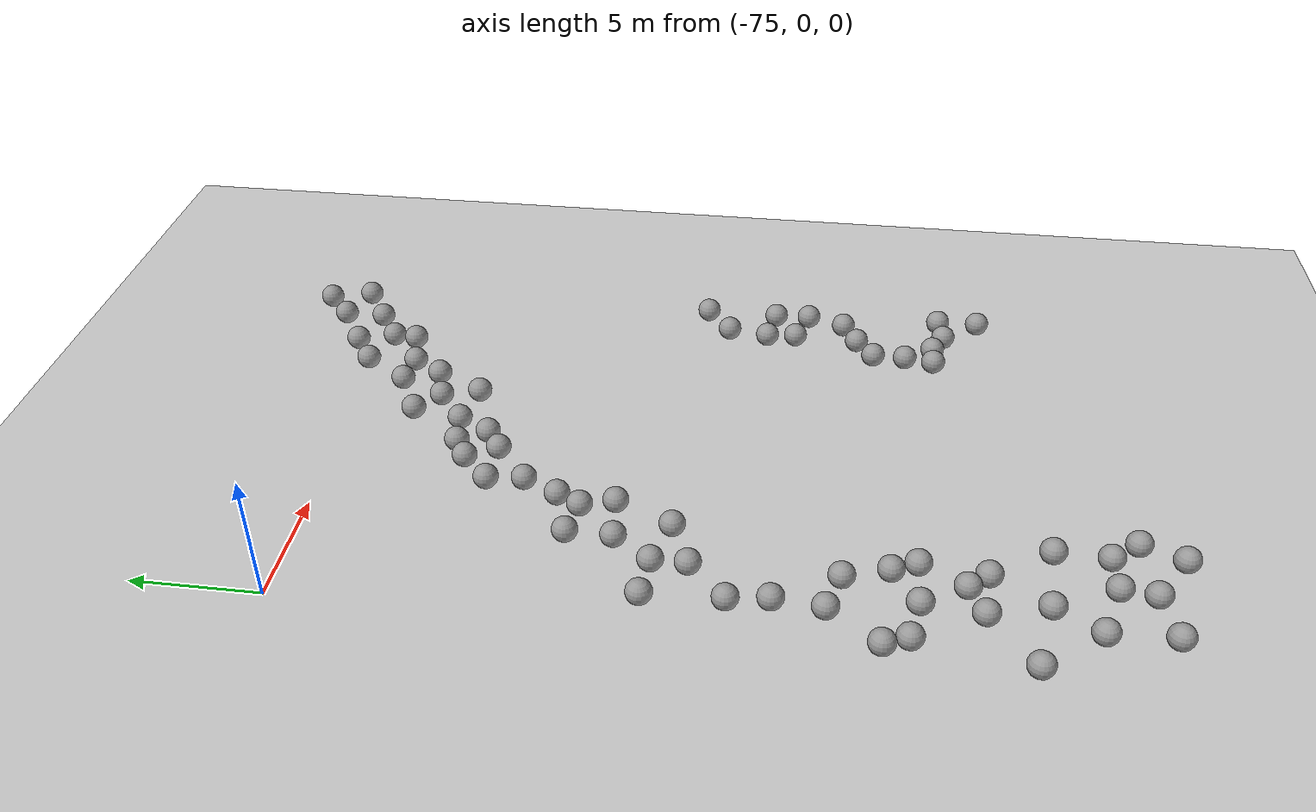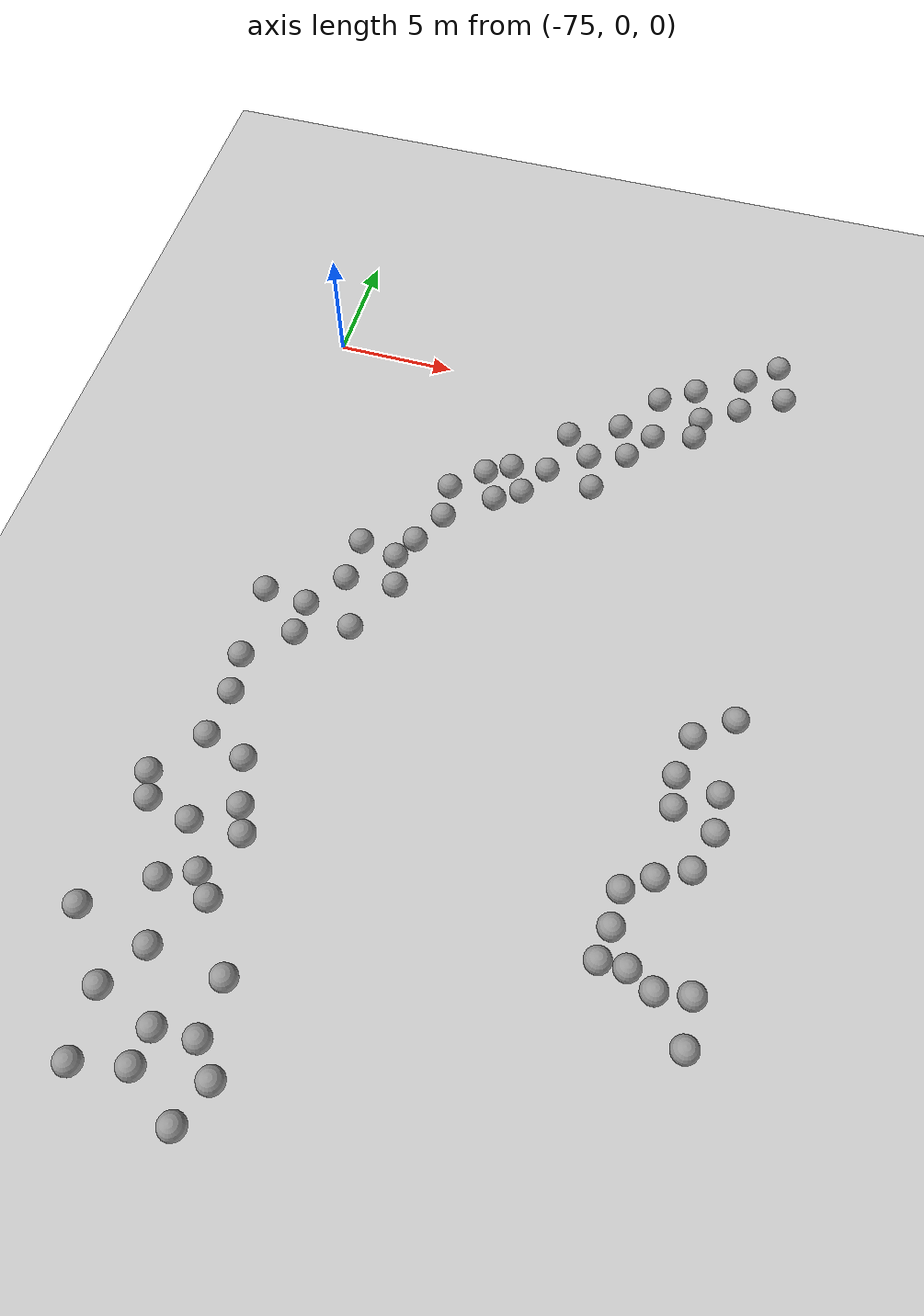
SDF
<sdf version="1.6">
 <world name="default">
  <model name="ground_plane">
   <static>1</static>
   <link name="link">
    <collision name="collision">
     <geometry><plane><normal>0 0 1</normal><size>100 100</size></plane></geometry>
     <surface><friction><ode><mu>100</mu><mu2>50</mu2></ode></friction></surface>
    </collision>
    <visual name="visual">
     <cast_shadows>0</cast_shadows>
     <geometry><plane><normal>0 0 1</normal><size>100 100</size></plane></geometry>
     <material>
      <script><uri>file://media/materials/scripts/gazebo.material</uri><name>Gazebo/Grey</name></script>
     </material>
    </visual>
   </link>
  </model>
  <model name="unit_sphere_0_clone_37">
   <pose>-71.4541 -29.9614 0.5 0 -0 0</pose>
   <link name="link">
    <inertial>
     <mass>1</mass>
     <inertia><ixx>0.1</ixx><ixy>0</ixy><ixz>0</ixz><iyy>0.1</iyy><iyz>0</iyz><izz>0.1</izz></inertia>
    </inertial>
    <collision name="collision"><geometry><sphere><radius>0.5</radius></sphere></geometry></collision>
    <visual name="visual">
     <geometry><sphere><radius>0.5</radius></sphere></geometry>
     <material>
      <script><name>Gazebo/Grey</name><uri>file://media/materials/scripts/gazebo.material</uri></script>
     </material>
    </visual>
   </link>
  </model>
  <model name="unit_sphere_0_clone_38">
   <pose>-73 -23 0.5 0 -0 0</pose>
   <link name="link">
    <inertial>
     <mass>1</mass>
     <inertia><ixx>0.1</ixx><ixy>0</ixy><ixz>0</ixz><iyy>0.1</iyy><iyz>0</iyz><izz>0.1</izz></inertia>
    </inertial>
    <collision name="collision"><geometry><sphere><radius>0.5</radius></sphere></geometry></collision>
    <visual name="visual">
     <geometry><sphere><radius>0.5</radius></sphere></geometry>
     <material>
      <script><name>Gazebo/Grey</name><uri>file://media/materials/scripts/gazebo.material</uri></script>
     </material>
    </visual>
   </link>
  </model>
  <model name="unit_sphere_0_clone_39">
   <pose>-71.9959 -14.7912 0.5 0 -0 0</pose>
   <link name="link">
    <inertial>
     <mass>1</mass>
     <inertia><ixx>0.1</ixx><ixy>0</ixy><ixz>0</ixz><iyy>0.1</iyy><iyz>0</iyz><izz>0.1</izz></inertia>
    </inertial>
    <collision name="collision"><geometry><sphere><radius>0.5</radius></sphere></geometry></collision>
    <visual name="visual">
     <geometry><sphere><radius>0.5</radius></sphere></geometry>
     <material>
      <script><name>Gazebo/Grey</name><uri>file://media/materials/scripts/gazebo.material</uri></script>
     </material>
    </visual>
   </link>
  </model>
  <model name="unit_sphere_0_clone_40">
   <pose>-65.2346 -5.96361 0.5 0 -0 0</pose>
   <link name="link">
    <inertial>
     <mass>1</mass>
     <inertia><ixx>0.1</ixx><ixy>0</ixy><ixz>0</ixz><iyy>0.1</iyy><iyz>0</iyz><izz>0.1</izz></inertia>
    </inertial>
    <collision name="collision"><geometry><sphere><radius>0.5</radius></sphere></geometry></collision>
    <visual name="visual">
     <geometry><sphere><radius>0.5</radius></sphere></geometry>
     <material>
      <script><name>Gazebo/Grey</name><uri>file://media/materials/scripts/gazebo.material</uri></script>
     </material>
    </visual>
   </link>
  </model>
  <model name="unit_sphere_0_clone_41">
   <pose>-55.4814 1.77001 0.5 0 -0 0</pose>
   <link name="link">
    <inertial>
     <mass>1</mass>
     <inertia><ixx>0.1</ixx><ixy>0</ixy><ixz>0</ixz><iyy>0.1</iyy><iyz>0</iyz><izz>0.1</izz></inertia>
    </inertial>
    <collision name="collision"><geometry><sphere><radius>0.5</radius></sphere></geometry></collision>
    <visual name="visual">
     <geometry><sphere><radius>0.5</radius></sphere></geometry>
     <material>
      <script><name>Gazebo/Grey</name><uri>file://media/materials/scripts/gazebo.material</uri></script>
     </material>
    </visual>
   </link>
  </model>
  <model name="unit_sphere_0_clone_61">
   <pose>-57.8075 -22.7856 0.5 0 -0 0</pose>
   <link name="link">
    <inertial>
     <mass>1</mass>
     <inertia><ixx>0.1</ixx><ixy>0</ixy><ixz>0</ixz><iyy>0.1</iyy><iyz>0</iyz><izz>0.1</izz></inertia>
    </inertial>
    <collision name="collision"><geometry><sphere><radius>0.5</radius></sphere></geometry></collision>
    <visual name="visual">
     <geometry><sphere><radius>0.5</radius></sphere></geometry>
     <material>
      <script><name>Gazebo/Grey</name><uri>file://media/materials/scripts/gazebo.material</uri></script>
     </material>
    </visual>
   </link>
  </model>
  <model name="unit_sphere_0_clone_84">
   <pose>-55.5232 -20.1009 0.5 0 -0 0</pose>
   <link name="link">
    <inertial>
     <mass>1</mass>
     <inertia><ixx>0.1</ixx><ixy>0</ixy><ixz>0</ixz><iyy>0.1</iyy><iyz>0</iyz><izz>0.1</izz></inertia>
    </inertial>
    <collision name="collision"><geometry><sphere><radius>0.5</radius></sphere></geometry></collision>
    <visual name="visual">
     <geometry><sphere><radius>0.5</radius></sphere></geometry>
     <material>
      <script><name>Gazebo/Grey</name><uri>file://media/materials/scripts/gazebo.material</uri></script>
     </material>
    </visual>
   </link>
  </model>
  <model name="unit_sphere_0_clone_85">
   <pose>-56.7151 -16.7524 0.5 0 -0 0</pose>
   <link name="link">
    <inertial>
     <mass>1</mass>
     <inertia><ixx>0.1</ixx><ixy>0</ixy><ixz>0</ixz><iyy>0.1</iyy><iyz>0</iyz><izz>0.1</izz></inertia>
    </inertial>
    <collision name="collision"><geometry><sphere><radius>0.5</radius></sphere></geometry></collision>
    <visual name="visual">
     <geometry><sphere><radius>0.5</radius></sphere></geometry>
     <material>
      <script><name>Gazebo/Grey</name><uri>file://media/materials/scripts/gazebo.material</uri></script>
     </material>
    </visual>
   </link>
  </model>
  <model name="unit_sphere_0_clone_96">
   <pose>-73.2566 -25.2419 0.5 0 -0 0</pose>
   <link name="link">
    <inertial>
     <mass>1</mass>
     <inertia><ixx>0.1</ixx><ixy>0</ixy><ixz>0</ixz><iyy>0.1</iyy><iyz>0</iyz><izz>0.1</izz></inertia>
    </inertial>
    <collision name="collision"><geometry><sphere><radius>0.5</radius></sphere></geometry></collision>
    <visual name="visual">
     <geometry><sphere><radius>0.5</radius></sphere></geometry>
     <material>
      <script><name>Gazebo/Grey</name><uri>file://media/materials/scripts/gazebo.material</uri></script>
     </material>
    </visual>
   </link>
  </model>
  <model name="unit_sphere_0_clone_97">
   <pose>-73.4269 -17.8362 0.5 0 -0 0</pose>
   <link name="link">
    <inertial>
     <mass>1</mass>
     <inertia><ixx>0.1</ixx><ixy>0</ixy><ixz>0</ixz><iyy>0.1</iyy><iyz>0</iyz><izz>0.1</izz></inertia>
    </inertial>
    <collision name="collision"><geometry><sphere><radius>0.5</radius></sphere></geometry></collision>
    <visual name="visual">
     <geometry><sphere><radius>0.5</radius></sphere></geometry>
     <material>
      <script><name>Gazebo/Grey</name><uri>file://media/materials/scripts/gazebo.material</uri></script>
     </material>
    </visual>
   </link>
  </model>
  <model name="unit_sphere_0_clone_98">
   <pose>-70.819 -10.0994 0.5 0 -0 0</pose>
   <link name="link">
    <inertial>
     <mass>1</mass>
     <inertia><ixx>0.1</ixx><ixy>0</ixy><ixz>0</ixz><iyy>0.1</iyy><iyz>0</iyz><izz>0.1</izz></inertia>
    </inertial>
    <collision name="collision"><geometry><sphere><radius>0.5</radius></sphere></geometry></collision>
    <visual name="visual">
     <geometry><sphere><radius>0.5</radius></sphere></geometry>
     <material>
      <script><name>Gazebo/Grey</name><uri>file://media/materials/scripts/gazebo.material</uri></script>
     </material>
    </visual>
   </link>
  </model>
  <model name="unit_sphere_0_clone_99">
   <pose>-64.0278 -2.5454 0.5 0 -0 0</pose>
   <link name="link">
    <inertial>
     <mass>1</mass>
     <inertia><ixx>0.1</ixx><ixy>0</ixy><ixz>0</ixz><iyy>0.1</iyy><iyz>0</iyz><izz>0.1</izz></inertia>
    </inertial>
    <collision name="collision"><geometry><sphere><radius>0.5</radius></sphere></geometry></collision>
    <visual name="visual">
     <geometry><sphere><radius>0.5</radius></sphere></geometry>
     <material>
      <script><name>Gazebo/Grey</name><uri>file://media/materials/scripts/gazebo.material</uri></script>
     </material>
    </visual>
   </link>
  </model>
  <model name="unit_sphere_0_clone_100">
   <pose>-59.2525 1.25452 0.5 0 -0 0</pose>
   <link name="link">
    <inertial>
     <mass>1</mass>
     <inertia><ixx>0.1</ixx><ixy>0</ixy><ixz>0</ixz><iyy>0.1</iyy><iyz>0</iyz><izz>0.1</izz></inertia>
    </inertial>
    <collision name="collision"><geometry><sphere><radius>0.5</radius></sphere></geometry></collision>
    <visual name="visual">
     <geometry><sphere><radius>0.5</radius></sphere></geometry>
     <material>
      <script><name>Gazebo/Grey</name><uri>file://media/materials/scripts/gazebo.material</uri></script>
     </material>
    </visual>
   </link>
  </model>
  <model name="unit_sphere_0_clone_148">
   <pose>-75.5055 -26.862 0.5 0 -0 0</pose>
   <link name="link">
    <inertial>
     <mass>1</mass>
     <inertia><ixx>0.1</ixx><ixy>0</ixy><ixz>0</ixz><iyy>0.1</iyy><iyz>0</iyz><izz>0.1</izz></inertia>
    </inertial>
    <collision name="collision"><geometry><sphere><radius>0.5</radius></sphere></geometry></collision>
    <visual name="visual">
     <geometry><sphere><radius>0.5</radius></sphere></geometry>
     <material>
      <script><name>Gazebo/Grey</name><uri>file://media/materials/scripts/gazebo.material</uri></script>
     </material>
    </visual>
   </link>
  </model>
  <model name="unit_sphere_0_clone_149">
   <pose>-75.1137 -21.6643 0.5 0 -0 0</pose>
   <link name="link">
    <inertial>
     <mass>1</mass>
     <inertia><ixx>0.1</ixx><ixy>0</ixy><ixz>0</ixz><iyy>0.1</iyy><iyz>0</iyz><izz>0.1</izz></inertia>
    </inertial>
    <collision name="collision"><geometry><sphere><radius>0.5</radius></sphere></geometry></collision>
    <visual name="visual">
     <geometry><sphere><radius>0.5</radius></sphere></geometry>
     <material>
      <script><name>Gazebo/Grey</name><uri>file://media/materials/scripts/gazebo.material</uri></script>
     </material>
    </visual>
   </link>
  </model>
  <model name="unit_sphere_0_clone_150">
   <pose>-73.7442 -13.2528 0.5 0 -0 0</pose>
   <link name="link">
    <inertial>
     <mass>1</mass>
     <inertia><ixx>0.1</ixx><ixy>0</ixy><ixz>0</ixz><iyy>0.1</iyy><iyz>0</iyz><izz>0.1</izz></inertia>
    </inertial>
    <collision name="collision"><geometry><sphere><radius>0.5</radius></sphere></geometry></collision>
    <visual name="visual">
     <geometry><sphere><radius>0.5</radius></sphere></geometry>
     <material>
      <script><name>Gazebo/Grey</name><uri>file://media/materials/scripts/gazebo.material</uri></script>
     </material>
    </visual>
   </link>
  </model>
  <model name="unit_sphere_0_clone_151">
   <pose>-68.1436 -6.51916 0.5 0 -0 0</pose>
   <link name="link">
    <inertial>
     <mass>1</mass>
     <inertia><ixx>0.1</ixx><ixy>0</ixy><ixz>0</ixz><iyy>0.1</iyy><iyz>0</iyz><izz>0.1</izz></inertia>
    </inertial>
    <collision name="collision"><geometry><sphere><radius>0.5</radius></sphere></geometry></collision>
    <visual name="visual">
     <geometry><sphere><radius>0.5</radius></sphere></geometry>
     <material>
      <script><name>Gazebo/Grey</name><uri>file://media/materials/scripts/gazebo.material</uri></script>
     </material>
    </visual>
   </link>
  </model>
  <model name="unit_sphere_1_clone_71">
   <pose>-54.6851 -26.0573 0.5 0 -0 0</pose>
   <link name="link">
    <inertial>
     <mass>1</mass>
     <inertia><ixx>0.1</ixx><ixy>0</ixy><ixz>0</ixz><iyy>0.1</iyy><iyz>0</iyz><izz>0.1</izz></inertia>
    </inertial>
    <collision name="collision"><geometry><sphere><radius>0.5</radius></sphere></geometry></collision>
    <visual name="visual">
     <geometry><sphere><radius>0.5</radius></sphere></geometry>
     <material>
      <script><name>Gazebo/Grey</name><uri>file://media/materials/scripts/gazebo.material</uri></script>
     </material>
    </visual>
   </link>
  </model>
  <model name="unit_sphere_1_clone_72">
   <pose>-54.7493 -24.3242 0.5 0 -0 0</pose>
   <link name="link">
    <inertial>
     <mass>1</mass>
     <inertia><ixx>0.1</ixx><ixy>0</ixy><ixz>0</ixz><iyy>0.1</iyy><iyz>0</iyz><izz>0.1</izz></inertia>
    </inertial>
    <collision name="collision"><geometry><sphere><radius>0.5</radius></sphere></geometry></collision>
    <visual name="visual">
     <geometry><sphere><radius>0.5</radius></sphere></geometry>
     <material>
      <script><name>Gazebo/Grey</name><uri>file://media/materials/scripts/gazebo.material</uri></script>
     </material>
    </visual>
   </link>
  </model>
  <model name="unit_sphere_1_clone_73">
   <pose>-56 -24.5039 0.5 0 -0 0</pose>
   <link name="link">
    <inertial>
     <mass>1</mass>
     <inertia><ixx>0.1</ixx><ixy>0</ixy><ixz>0</ixz><iyy>0.1</iyy><iyz>0</iyz><izz>0.1</izz></inertia>
    </inertial>
    <collision name="collision"><geometry><sphere><radius>0.5</radius></sphere></geometry></collision>
    <visual name="visual">
     <geometry><sphere><radius>0.5</radius></sphere></geometry>
     <material>
      <script><name>Gazebo/Grey</name><uri>file://media/materials/scripts/gazebo.material</uri></script>
     </material>
    </visual>
   </link>
  </model>
  <model name="unit_sphere_1_clone_74">
   <pose>-57 -24 0.5 0 -0 0</pose>
   <link name="link">
    <inertial>
     <mass>1</mass>
     <inertia><ixx>0.1</ixx><ixy>0</ixy><ixz>0</ixz><iyy>0.1</iyy><iyz>0</iyz><izz>0.1</izz></inertia>
    </inertial>
    <collision name="collision"><geometry><sphere><radius>0.5</radius></sphere></geometry></collision>
    <visual name="visual">
     <geometry><sphere><radius>0.5</radius></sphere></geometry>
     <material>
      <script><name>Gazebo/Grey</name><uri>file://media/materials/scripts/gazebo.material</uri></script>
     </material>
    </visual>
   </link>
  </model>
  <model name="unit_sphere_1_clone_75">
   <pose>-58 -24 0.5 0 -0 0</pose>
   <link name="link">
    <inertial>
     <mass>1</mass>
     <inertia><ixx>0.1</ixx><ixy>0</ixy><ixz>0</ixz><iyy>0.1</iyy><iyz>0</iyz><izz>0.1</izz></inertia>
    </inertial>
    <collision name="collision"><geometry><sphere><radius>0.5</radius></sphere></geometry></collision>
    <visual name="visual">
     <geometry><sphere><radius>0.5</radius></sphere></geometry>
     <material>
      <script><name>Gazebo/Grey</name><uri>file://media/materials/scripts/gazebo.material</uri></script>
     </material>
    </visual>
   </link>
  </model>
  <model name="unit_sphere_1_clone_76">
   <pose>-56.7215 -20.6939 0.5 0 -0 0</pose>
   <link name="link">
    <inertial>
     <mass>1</mass>
     <inertia><ixx>0.1</ixx><ixy>0</ixy><ixz>0</ixz><iyy>0.1</iyy><iyz>0</iyz><izz>0.1</izz></inertia>
    </inertial>
    <collision name="collision"><geometry><sphere><radius>0.5</radius></sphere></geometry></collision>
    <visual name="visual">
     <geometry><sphere><radius>0.5</radius></sphere></geometry>
     <material>
      <script><name>Gazebo/Grey</name><uri>file://media/materials/scripts/gazebo.material</uri></script>
     </material>
    </visual>
   </link>
  </model>
  <model name="unit_sphere_1_clone_77">
   <pose>-57.7725 -21.4186 0.5 0 -0 0</pose>
   <link name="link">
    <inertial>
     <mass>1</mass>
     <inertia><ixx>0.1</ixx><ixy>0</ixy><ixz>0</ixz><iyy>0.1</iyy><iyz>0</iyz><izz>0.1</izz></inertia>
    </inertial>
    <collision name="collision"><geometry><sphere><radius>0.5</radius></sphere></geometry></collision>
    <visual name="visual">
     <geometry><sphere><radius>0.5</radius></sphere></geometry>
     <material>
      <script><name>Gazebo/Grey</name><uri>file://media/materials/scripts/gazebo.material</uri></script>
     </material>
    </visual>
   </link>
  </model>
  <model name="unit_sphere_1_clone_78">
   <pose>-55 -18.5396 0.5 0 -0 0</pose>
   <link name="link">
    <inertial>
     <mass>1</mass>
     <inertia><ixx>0.1</ixx><ixy>0</ixy><ixz>0</ixz><iyy>0.1</iyy><iyz>0</iyz><izz>0.1</izz></inertia>
    </inertial>
    <collision name="collision"><geometry><sphere><radius>0.5</radius></sphere></geometry></collision>
    <visual name="visual">
     <geometry><sphere><radius>0.5</radius></sphere></geometry>
     <material>
      <script><name>Gazebo/Grey</name><uri>file://media/materials/scripts/gazebo.material</uri></script>
     </material>
    </visual>
   </link>
  </model>
  <model name="unit_sphere_1_clone_79">
   <pose>-55.068 -17.0764 0.5 0 -0 0</pose>
   <link name="link">
    <inertial>
     <mass>1</mass>
     <inertia><ixx>0.1</ixx><ixy>0</ixy><ixz>0</ixz><iyy>0.1</iyy><iyz>0</iyz><izz>0.1</izz></inertia>
    </inertial>
    <collision name="collision"><geometry><sphere><radius>0.5</radius></sphere></geometry></collision>
    <visual name="visual">
     <geometry><sphere><radius>0.5</radius></sphere></geometry>
     <material>
      <script><name>Gazebo/Grey</name><uri>file://media/materials/scripts/gazebo.material</uri></script>
     </material>
    </visual>
   </link>
  </model>
  <model name="unit_sphere_1_clone_80">
   <pose>-56.5933 -17.9941 0.5 0 -0 0</pose>
   <link name="link">
    <inertial>
     <mass>1</mass>
     <inertia><ixx>0.1</ixx><ixy>0</ixy><ixz>0</ixz><iyy>0.1</iyy><iyz>0</iyz><izz>0.1</izz></inertia>
    </inertial>
    <collision name="collision"><geometry><sphere><radius>0.5</radius></sphere></geometry></collision>
    <visual name="visual">
     <geometry><sphere><radius>0.5</radius></sphere></geometry>
     <material>
      <script><name>Gazebo/Grey</name><uri>file://media/materials/scripts/gazebo.material</uri></script>
     </material>
    </visual>
   </link>
  </model>
  <model name="unit_sphere_1_clone_81">
   <pose>-56.4221 -15.0572 0.5 0 -0 0</pose>
   <link name="link">
    <inertial>
     <mass>1</mass>
     <inertia><ixx>0.1</ixx><ixy>0</ixy><ixz>0</ixz><iyy>0.1</iyy><iyz>0</iyz><izz>0.1</izz></inertia>
    </inertial>
    <collision name="collision"><geometry><sphere><radius>0.5</radius></sphere></geometry></collision>
    <visual name="visual">
     <geometry><sphere><radius>0.5</radius></sphere></geometry>
     <material>
      <script><name>Gazebo/Grey</name><uri>file://media/materials/scripts/gazebo.material</uri></script>
     </material>
    </visual>
   </link>
  </model>
  <model name="unit_sphere_1_clone_82">
   <pose>-55 -14 0.5 0 -0 0</pose>
   <link name="link">
    <inertial>
     <mass>1</mass>
     <inertia><ixx>0.1</ixx><ixy>0</ixy><ixz>0</ixz><iyy>0.1</iyy><iyz>0</iyz><izz>0.1</izz></inertia>
    </inertial>
    <collision name="collision"><geometry><sphere><radius>0.5</radius></sphere></geometry></collision>
    <visual name="visual">
     <geometry><sphere><radius>0.5</radius></sphere></geometry>
     <material>
      <script><name>Gazebo/Grey</name><uri>file://media/materials/scripts/gazebo.material</uri></script>
     </material>
    </visual>
   </link>
  </model>
  <model name="unit_sphere_1_clone_166">
   <pose>-55.9641 3.50484 0.5 0 -0 0</pose>
   <link name="link">
    <inertial>
     <mass>1</mass>
     <inertia><ixx>0.1</ixx><ixy>0</ixy><ixz>0</ixz><iyy>0.1</iyy><iyz>0</iyz><izz>0.1</izz></inertia>
    </inertial>
    <collision name="collision"><geometry><sphere><radius>0.5</radius></sphere></geometry></collision>
    <visual name="visual">
     <geometry><sphere><radius>0.5</radius></sphere></geometry>
     <material>
      <script><name>Gazebo/Grey</name><uri>file://media/materials/scripts/gazebo.material</uri></script>
     </material>
    </visual>
   </link>
  </model>
  <model name="unit_sphere_1_clone_168">
   <pose>-57.2548 2.42054 0.5 0 -0 0</pose>
   <link name="link">
    <inertial>
     <mass>1</mass>
     <inertia><ixx>0.1</ixx><ixy>0</ixy><ixz>0</ixz><iyy>0.1</iyy><iyz>0</iyz><izz>0.1</izz></inertia>
    </inertial>
    <collision name="collision"><geometry><sphere><radius>0.5</radius></sphere></geometry></collision>
    <visual name="visual">
     <geometry><sphere><radius>0.5</radius></sphere></geometry>
     <material>
      <script><name>Gazebo/Grey</name><uri>file://media/materials/scripts/gazebo.material</uri></script>
     </material>
    </visual>
   </link>
  </model>
  <model name="unit_sphere_1_clone_169">
   <pose>-57.2641 0.695641 0.5 0 -0 0</pose>
   <link name="link">
    <inertial>
     <mass>1</mass>
     <inertia><ixx>0.1</ixx><ixy>0</ixy><ixz>0</ixz><iyy>0.1</iyy><iyz>0</iyz><izz>0.1</izz></inertia>
    </inertial>
    <collision name="collision"><geometry><sphere><radius>0.5</radius></sphere></geometry></collision>
    <visual name="visual">
     <geometry><sphere><radius>0.5</radius></sphere></geometry>
     <material>
      <script><name>Gazebo/Grey</name><uri>file://media/materials/scripts/gazebo.material</uri></script>
     </material>
    </visual>
   </link>
  </model>
  <model name="unit_sphere_1_clone_170">
   <pose>-58.7625 -0.258064 0.5 0 -0 0</pose>
   <link name="link">
    <inertial>
     <mass>1</mass>
     <inertia><ixx>0.1</ixx><ixy>0</ixy><ixz>0</ixz><iyy>0.1</iyy><iyz>0</iyz><izz>0.1</izz></inertia>
    </inertial>
    <collision name="collision"><geometry><sphere><radius>0.5</radius></sphere></geometry></collision>
    <visual name="visual">
     <geometry><sphere><radius>0.5</radius></sphere></geometry>
     <material>
      <script><name>Gazebo/Grey</name><uri>file://media/materials/scripts/gazebo.material</uri></script>
     </material>
    </visual>
   </link>
  </model>
  <model name="unit_sphere_1_clone_171">
   <pose>-58.8745 -1.276 0.5 0 -0 0</pose>
   <link name="link">
    <inertial>
     <mass>1</mass>
     <inertia><ixx>0.1</ixx><ixy>0</ixy><ixz>0</ixz><iyy>0.1</iyy><iyz>0</iyz><izz>0.1</izz></inertia>
    </inertial>
    <collision name="collision"><geometry><sphere><radius>0.5</radius></sphere></geometry></collision>
    <visual name="visual">
     <geometry><sphere><radius>0.5</radius></sphere></geometry>
     <material>
      <script><name>Gazebo/Grey</name><uri>file://media/materials/scripts/gazebo.material</uri></script>
     </material>
    </visual>
   </link>
  </model>
  <model name="unit_sphere_1_clone_172">
   <pose>-60.5607 -1.70853 0.5 0 -0 0</pose>
   <link name="link">
    <inertial>
     <mass>1</mass>
     <inertia><ixx>0.1</ixx><ixy>0</ixy><ixz>0</ixz><iyy>0.1</iyy><iyz>0</iyz><izz>0.1</izz></inertia>
    </inertial>
    <collision name="collision"><geometry><sphere><radius>0.5</radius></sphere></geometry></collision>
    <visual name="visual">
     <geometry><sphere><radius>0.5</radius></sphere></geometry>
     <material>
      <script><name>Gazebo/Grey</name><uri>file://media/materials/scripts/gazebo.material</uri></script>
     </material>
    </visual>
   </link>
  </model>
  <model name="unit_sphere_1_clone_173">
   <pose>-60.6725 0.361998 0.5 0 -0 0</pose>
   <link name="link">
    <inertial>
     <mass>1</mass>
     <inertia><ixx>0.1</ixx><ixy>0</ixy><ixz>0</ixz><iyy>0.1</iyy><iyz>0</iyz><izz>0.1</izz></inertia>
    </inertial>
    <collision name="collision"><geometry><sphere><radius>0.5</radius></sphere></geometry></collision>
    <visual name="visual">
     <geometry><sphere><radius>0.5</radius></sphere></geometry>
     <material>
      <script><name>Gazebo/Grey</name><uri>file://media/materials/scripts/gazebo.material</uri></script>
     </material>
    </visual>
   </link>
  </model>
  <model name="unit_sphere_1_clone_174">
   <pose>-61.4149 -3 0.5 0 -0 0</pose>
   <link name="link">
    <inertial>
     <mass>1</mass>
     <inertia><ixx>0.1</ixx><ixy>0</ixy><ixz>0</ixz><iyy>0.1</iyy><iyz>0</iyz><izz>0.1</izz></inertia>
    </inertial>
    <collision name="collision"><geometry><sphere><radius>0.5</radius></sphere></geometry></collision>
    <visual name="visual">
     <geometry><sphere><radius>0.5</radius></sphere></geometry>
     <material>
      <script><name>Gazebo/Grey</name><uri>file://media/materials/scripts/gazebo.material</uri></script>
     </material>
    </visual>
   </link>
  </model>
  <model name="unit_sphere_1_clone_175">
   <pose>-62 -1.54072 0.5 0 -0 0</pose>
   <link name="link">
    <inertial>
     <mass>1</mass>
     <inertia><ixx>0.1</ixx><ixy>0</ixy><ixz>0</ixz><iyy>0.1</iyy><iyz>0</iyz><izz>0.1</izz></inertia>
    </inertial>
    <collision name="collision"><geometry><sphere><radius>0.5</radius></sphere></geometry></collision>
    <visual name="visual">
     <geometry><sphere><radius>0.5</radius></sphere></geometry>
     <material>
      <script><name>Gazebo/Grey</name><uri>file://media/materials/scripts/gazebo.material</uri></script>
     </material>
    </visual>
   </link>
  </model>
  <model name="unit_sphere_1_clone_176">
   <pose>-62.9529 -3.46797 0.5 0 -0 0</pose>
   <link name="link">
    <inertial>
     <mass>1</mass>
     <inertia><ixx>0.1</ixx><ixy>0</ixy><ixz>0</ixz><iyy>0.1</iyy><iyz>0</iyz><izz>0.1</izz></inertia>
    </inertial>
    <collision name="collision"><geometry><sphere><radius>0.5</radius></sphere></geometry></collision>
    <visual name="visual">
     <geometry><sphere><radius>0.5</radius></sphere></geometry>
     <material>
      <script><name>Gazebo/Grey</name><uri>file://media/materials/scripts/gazebo.material</uri></script>
     </material>
    </visual>
   </link>
  </model>
  <model name="unit_sphere_1_clone_177">
   <pose>-62.5025 -5 0.5 0 -0 0</pose>
   <link name="link">
    <inertial>
     <mass>1</mass>
     <inertia><ixx>0.1</ixx><ixy>0</ixy><ixz>0</ixz><iyy>0.1</iyy><iyz>0</iyz><izz>0.1</izz></inertia>
    </inertial>
    <collision name="collision"><geometry><sphere><radius>0.5</radius></sphere></geometry></collision>
    <visual name="visual">
     <geometry><sphere><radius>0.5</radius></sphere></geometry>
     <material>
      <script><name>Gazebo/Grey</name><uri>file://media/materials/scripts/gazebo.material</uri></script>
     </material>
    </visual>
   </link>
  </model>
  <model name="unit_sphere_1_clone_178">
   <pose>-64.4679 -4.61505 0.5 0 -0 0</pose>
   <link name="link">
    <inertial>
     <mass>1</mass>
     <inertia><ixx>0.1</ixx><ixy>0</ixy><ixz>0</ixz><iyy>0.1</iyy><iyz>0</iyz><izz>0.1</izz></inertia>
    </inertial>
    <collision name="collision"><geometry><sphere><radius>0.5</radius></sphere></geometry></collision>
    <visual name="visual">
     <geometry><sphere><radius>0.5</radius></sphere></geometry>
     <material>
      <script><name>Gazebo/Grey</name><uri>file://media/materials/scripts/gazebo.material</uri></script>
     </material>
    </visual>
   </link>
  </model>
  <model name="unit_sphere_1_clone_179">
   <pose>-65.9403 -4.84031 0.5 0 -0 0</pose>
   <link name="link">
    <inertial>
     <mass>1</mass>
     <inertia><ixx>0.1</ixx><ixy>0</ixy><ixz>0</ixz><iyy>0.1</iyy><iyz>0</iyz><izz>0.1</izz></inertia>
    </inertial>
    <collision name="collision"><geometry><sphere><radius>0.5</radius></sphere></geometry></collision>
    <visual name="visual">
     <geometry><sphere><radius>0.5</radius></sphere></geometry>
     <material>
      <script><name>Gazebo/Grey</name><uri>file://media/materials/scripts/gazebo.material</uri></script>
     </material>
    </visual>
   </link>
  </model>
  <model name="unit_sphere_1_clone_180">
   <pose>-66.224 -6.61765 0.5 0 -0 0</pose>
   <link name="link">
    <inertial>
     <mass>1</mass>
     <inertia><ixx>0.1</ixx><ixy>0</ixy><ixz>0</ixz><iyy>0.1</iyy><iyz>0</iyz><izz>0.1</izz></inertia>
    </inertial>
    <collision name="collision"><geometry><sphere><radius>0.5</radius></sphere></geometry></collision>
    <visual name="visual">
     <geometry><sphere><radius>0.5</radius></sphere></geometry>
     <material>
      <script><name>Gazebo/Grey</name><uri>file://media/materials/scripts/gazebo.material</uri></script>
     </material>
    </visual>
   </link>
  </model>
  <model name="unit_sphere_1_clone_181">
   <pose>-66.9087 -5.39095 0.5 0 -0 0</pose>
   <link name="link">
    <inertial>
     <mass>1</mass>
     <inertia><ixx>0.1</ixx><ixy>0</ixy><ixz>0</ixz><iyy>0.1</iyy><iyz>0</iyz><izz>0.1</izz></inertia>
    </inertial>
    <collision name="collision"><geometry><sphere><radius>0.5</radius></sphere></geometry></collision>
    <visual name="visual">
     <geometry><sphere><radius>0.5</radius></sphere></geometry>
     <material>
      <script><name>Gazebo/Grey</name><uri>file://media/materials/scripts/gazebo.material</uri></script>
     </material>
    </visual>
   </link>
  </model>
  <model name="unit_sphere_1_clone_182">
   <pose>-68 -8 0.5 0 -0 0</pose>
   <link name="link">
    <inertial>
     <mass>1</mass>
     <inertia><ixx>0.1</ixx><ixy>0</ixy><ixz>0</ixz><iyy>0.1</iyy><iyz>0</iyz><izz>0.1</izz></inertia>
    </inertial>
    <collision name="collision"><geometry><sphere><radius>0.5</radius></sphere></geometry></collision>
    <visual name="visual">
     <geometry><sphere><radius>0.5</radius></sphere></geometry>
     <material>
      <script><name>Gazebo/Grey</name><uri>file://media/materials/scripts/gazebo.material</uri></script>
     </material>
    </visual>
   </link>
  </model>
  <model name="unit_sphere_1_clone_183">
   <pose>-69.2827 -10.398 0.5 0 -0 0</pose>
   <link name="link">
    <inertial>
     <mass>1</mass>
     <inertia><ixx>0.1</ixx><ixy>0</ixy><ixz>0</ixz><iyy>0.1</iyy><iyz>0</iyz><izz>0.1</izz></inertia>
    </inertial>
    <collision name="collision"><geometry><sphere><radius>0.5</radius></sphere></geometry></collision>
    <visual name="visual">
     <geometry><sphere><radius>0.5</radius></sphere></geometry>
     <material>
      <script><name>Gazebo/Grey</name><uri>file://media/materials/scripts/gazebo.material</uri></script>
     </material>
    </visual>
   </link>
  </model>
  <model name="unit_sphere_1_clone_184">
   <pose>-68.7593 -9.4368 0.5 0 -0 0</pose>
   <link name="link">
    <inertial>
     <mass>1</mass>
     <inertia><ixx>0.1</ixx><ixy>0</ixy><ixz>0</ixz><iyy>0.1</iyy><iyz>0</iyz><izz>0.1</izz></inertia>
    </inertial>
    <collision name="collision"><geometry><sphere><radius>0.5</radius></sphere></geometry></collision>
    <visual name="visual">
     <geometry><sphere><radius>0.5</radius></sphere></geometry>
     <material>
      <script><name>Gazebo/Grey</name><uri>file://media/materials/scripts/gazebo.material</uri></script>
     </material>
    </visual>
   </link>
  </model>
  <model name="unit_sphere_1_clone_185">
   <pose>-70.8676 -11.913 0.5 0 -0 0</pose>
   <link name="link">
    <inertial>
     <mass>1</mass>
     <inertia><ixx>0.1</ixx><ixy>0</ixy><ixz>0</ixz><iyy>0.1</iyy><iyz>0</iyz><izz>0.1</izz></inertia>
    </inertial>
    <collision name="collision"><geometry><sphere><radius>0.5</radius></sphere></geometry></collision>
    <visual name="visual">
     <geometry><sphere><radius>0.5</radius></sphere></geometry>
     <material>
      <script><name>Gazebo/Grey</name><uri>file://media/materials/scripts/gazebo.material</uri></script>
     </material>
    </visual>
   </link>
  </model>
  <model name="unit_sphere_1_clone_186">
   <pose>-68.9048 -11.7259 0.5 0 -0 0</pose>
   <link name="link">
    <inertial>
     <mass>1</mass>
     <inertia><ixx>0.1</ixx><ixy>0</ixy><ixz>0</ixz><iyy>0.1</iyy><iyz>0</iyz><izz>0.1</izz></inertia>
    </inertial>
    <collision name="collision"><geometry><sphere><radius>0.5</radius></sphere></geometry></collision>
    <visual name="visual">
     <geometry><sphere><radius>0.5</radius></sphere></geometry>
     <material>
      <script><name>Gazebo/Grey</name><uri>file://media/materials/scripts/gazebo.material</uri></script>
     </material>
    </visual>
   </link>
  </model>
  <model name="unit_sphere_1_clone_187">
   <pose>-70 -14 0.5 0 -0 0</pose>
   <link name="link">
    <inertial>
     <mass>1</mass>
     <inertia><ixx>0.1</ixx><ixy>0</ixy><ixz>0</ixz><iyy>0.1</iyy><iyz>0</iyz><izz>0.1</izz></inertia>
    </inertial>
    <collision name="collision"><geometry><sphere><radius>0.5</radius></sphere></geometry></collision>
    <visual name="visual">
     <geometry><sphere><radius>0.5</radius></sphere></geometry>
     <material>
      <script><name>Gazebo/Grey</name><uri>file://media/materials/scripts/gazebo.material</uri></script>
     </material>
    </visual>
   </link>
  </model>
  <model name="unit_sphere_1_clone_188">
   <pose>-72 -13.4318 0.5 0 -0 0</pose>
   <link name="link">
    <inertial>
     <mass>1</mass>
     <inertia><ixx>0.1</ixx><ixy>0</ixy><ixz>0</ixz><iyy>0.1</iyy><iyz>0</iyz><izz>0.1</izz></inertia>
    </inertial>
    <collision name="collision"><geometry><sphere><radius>0.5</radius></sphere></geometry></collision>
    <visual name="visual">
     <geometry><sphere><radius>0.5</radius></sphere></geometry>
     <material>
      <script><name>Gazebo/Grey</name><uri>file://media/materials/scripts/gazebo.material</uri></script>
     </material>
    </visual>
   </link>
  </model>
  <model name="unit_sphere_1_clone_189">
   <pose>-73.6228 -16.266 0.5 0 -0 0</pose>
   <link name="link">
    <inertial>
     <mass>1</mass>
     <inertia><ixx>0.1</ixx><ixy>0</ixy><ixz>0</ixz><iyy>0.1</iyy><iyz>0</iyz><izz>0.1</izz></inertia>
    </inertial>
    <collision name="collision"><geometry><sphere><radius>0.5</radius></sphere></geometry></collision>
    <visual name="visual">
     <geometry><sphere><radius>0.5</radius></sphere></geometry>
     <material>
      <script><name>Gazebo/Grey</name><uri>file://media/materials/scripts/gazebo.material</uri></script>
     </material>
    </visual>
   </link>
  </model>
  <model name="unit_sphere_1_clone_190">
   <pose>-73.6322 -19.7402 0.5 0 -0 0</pose>
   <link name="link">
    <inertial>
     <mass>1</mass>
     <inertia><ixx>0.1</ixx><ixy>0</ixy><ixz>0</ixz><iyy>0.1</iyy><iyz>0</iyz><izz>0.1</izz></inertia>
    </inertial>
    <collision name="collision"><geometry><sphere><radius>0.5</radius></sphere></geometry></collision>
    <visual name="visual">
     <geometry><sphere><radius>0.5</radius></sphere></geometry>
     <material>
      <script><name>Gazebo/Grey</name><uri>file://media/materials/scripts/gazebo.material</uri></script>
     </material>
    </visual>
   </link>
  </model>
  <model name="unit_sphere_1_clone_191">
   <pose>-74.7293 -22.6149 0.5 0 -0 0</pose>
   <link name="link">
    <inertial>
     <mass>1</mass>
     <inertia><ixx>0.1</ixx><ixy>0</ixy><ixz>0</ixz><iyy>0.1</iyy><iyz>0</iyz><izz>0.1</izz></inertia>
    </inertial>
    <collision name="collision"><geometry><sphere><radius>0.5</radius></sphere></geometry></collision>
    <visual name="visual">
     <geometry><sphere><radius>0.5</radius></sphere></geometry>
     <material>
      <script><name>Gazebo/Grey</name><uri>file://media/materials/scripts/gazebo.material</uri></script>
     </material>
    </visual>
   </link>
  </model>
  <model name="unit_sphere_1_clone_192">
   <pose>-71.9967 -20.2737 0.5 0 -0 0</pose>
   <link name="link">
    <inertial>
     <mass>1</mass>
     <inertia><ixx>0.1</ixx><ixy>0</ixy><ixz>0</ixz><iyy>0.1</iyy><iyz>0</iyz><izz>0.1</izz></inertia>
    </inertial>
    <collision name="collision"><geometry><sphere><radius>0.5</radius></sphere></geometry></collision>
    <visual name="visual">
     <geometry><sphere><radius>0.5</radius></sphere></geometry>
     <material>
      <script><name>Gazebo/Grey</name><uri>file://media/materials/scripts/gazebo.material</uri></script>
     </material>
    </visual>
   </link>
  </model>
  <model name="unit_sphere_1_clone_193">
   <pose>-71 -23 0.5 0 -0 0</pose>
   <link name="link">
    <inertial>
     <mass>1</mass>
     <inertia><ixx>0.1</ixx><ixy>0</ixy><ixz>0</ixz><iyy>0.1</iyy><iyz>0</iyz><izz>0.1</izz></inertia>
    </inertial>
    <collision name="collision"><geometry><sphere><radius>0.5</radius></sphere></geometry></collision>
    <visual name="visual">
     <geometry><sphere><radius>0.5</radius></sphere></geometry>
     <material>
      <script><name>Gazebo/Grey</name><uri>file://media/materials/scripts/gazebo.material</uri></script>
     </material>
    </visual>
   </link>
  </model>
  <model name="unit_sphere_1_clone_194">
   <pose>-71.4455 -22.0208 0.5 0 -0 0</pose>
   <link name="link">
    <inertial>
     <mass>1</mass>
     <inertia><ixx>0.1</ixx><ixy>0</ixy><ixz>0</ixz><iyy>0.1</iyy><iyz>0</iyz><izz>0.1</izz></inertia>
    </inertial>
    <collision name="collision"><geometry><sphere><radius>0.5</radius></sphere></geometry></collision>
    <visual name="visual">
     <geometry><sphere><radius>0.5</radius></sphere></geometry>
     <material>
      <script><name>Gazebo/Grey</name><uri>file://media/materials/scripts/gazebo.material</uri></script>
     </material>
    </visual>
   </link>
  </model>
  <model name="unit_sphere_1_clone_195">
   <pose>-71.9967 -24.6907 0.5 -0.039771 -0.035314 0.000701</pose>
   <link name="link">
    <inertial>
     <mass>1</mass>
     <inertia><ixx>0.1</ixx><ixy>0</ixy><ixz>0</ixz><iyy>0.1</iyy><iyz>0</iyz><izz>0.1</izz></inertia>
    </inertial>
    <collision name="collision"><geometry><sphere><radius>0.5</radius></sphere></geometry></collision>
    <visual name="visual">
     <geometry><sphere><radius>0.5</radius></sphere></geometry>
     <material>
      <script><name>Gazebo/Grey</name><uri>file://media/materials/scripts/gazebo.material</uri></script>
     </material>
    </visual>
   </link>
  </model>
  <model name="unit_sphere_1_clone_196">
   <pose>-71.2972 -25.4778 0.5 0.039629 0.035205 0.000696</pose>
   <link name="link">
    <inertial>
     <mass>1</mass>
     <inertia><ixx>0.1</ixx><ixy>0</ixy><ixz>0</ixz><iyy>0.1</iyy><iyz>0</iyz><izz>0.1</izz></inertia>
    </inertial>
    <collision name="collision"><geometry><sphere><radius>0.5</radius></sphere></geometry></collision>
    <visual name="visual">
     <geometry><sphere><radius>0.5</radius></sphere></geometry>
     <material>
      <script><name>Gazebo/Grey</name><uri>file://media/materials/scripts/gazebo.material</uri></script>
     </material>
    </visual>
   </link>
  </model>
  <model name="unit_sphere_1_clone_197">
   <pose>-72.6393 -27.5331 0.5 0 -0 0</pose>
   <link name="link">
    <inertial>
     <mass>1</mass>
     <inertia><ixx>0.1</ixx><ixy>0</ixy><ixz>0</ixz><iyy>0.1</iyy><iyz>0</iyz><izz>0.1</izz></inertia>
    </inertial>
    <collision name="collision"><geometry><sphere><radius>0.5</radius></sphere></geometry></collision>
    <visual name="visual">
     <geometry><sphere><radius>0.5</radius></sphere></geometry>
     <material>
      <script><name>Gazebo/Grey</name><uri>file://media/materials/scripts/gazebo.material</uri></script>
     </material>
    </visual>
   </link>
  </model>
  <model name="unit_sphere_1_clone_198">
   <pose>-73.7093 -29.1846 0.5 0 -0 0</pose>
   <link name="link">
    <inertial>
     <mass>1</mass>
     <inertia><ixx>0.1</ixx><ixy>0</ixy><ixz>0</ixz><iyy>0.1</iyy><iyz>0</iyz><izz>0.1</izz></inertia>
    </inertial>
    <collision name="collision"><geometry><sphere><radius>0.5</radius></sphere></geometry></collision>
    <visual name="visual">
     <geometry><sphere><radius>0.5</radius></sphere></geometry>
     <material>
      <script><name>Gazebo/Grey</name><uri>file://media/materials/scripts/gazebo.material</uri></script>
     </material>
    </visual>
   </link>
  </model>
  <model name="unit_sphere_1_clone_199">
   <pose>-69.7825 -27.8562 0.5 0 -0 0</pose>
   <link name="link">
    <inertial>
     <mass>1</mass>
     <inertia><ixx>0.1</ixx><ixy>0</ixy><ixz>0</ixz><iyy>0.1</iyy><iyz>0</iyz><izz>0.1</izz></inertia>
    </inertial>
    <collision name="collision"><geometry><sphere><radius>0.5</radius></sphere></geometry></collision>
    <visual name="visual">
     <geometry><sphere><radius>0.5</radius></sphere></geometry>
     <material>
      <script><name>Gazebo/Grey</name><uri>file://media/materials/scripts/gazebo.material</uri></script>
     </material>
    </visual>
   </link>
  </model>
  <model name="unit_sphere_1_clone_200">
   <pose>-73.6243 -31.6709 0.5 0 -0 0</pose>
   <link name="link">
    <inertial>
     <mass>1</mass>
     <inertia><ixx>0.1</ixx><ixy>0</ixy><ixz>0</ixz><iyy>0.1</iyy><iyz>0</iyz><izz>0.1</izz></inertia>
    </inertial>
    <collision name="collision"><geometry><sphere><radius>0.5</radius></sphere></geometry></collision>
    <visual name="visual">
     <geometry><sphere><radius>0.5</radius></sphere></geometry>
     <material>
      <script><name>Gazebo/Grey</name><uri>file://media/materials/scripts/gazebo.material</uri></script>
     </material>
    </visual>
   </link>
  </model>
  <model name="unit_sphere_1_clone_201">
   <pose>-69.8829 -29.9106 0.5 0 -0 0</pose>
   <link name="link">
    <inertial>
     <mass>1</mass>
     <inertia><ixx>0.1</ixx><ixy>0</ixy><ixz>0</ixz><iyy>0.1</iyy><iyz>0</iyz><izz>0.1</izz></inertia>
    </inertial>
    <collision name="collision"><geometry><sphere><radius>0.5</radius></sphere></geometry></collision>
    <visual name="visual">
     <geometry><sphere><radius>0.5</radius></sphere></geometry>
     <material>
      <script><name>Gazebo/Grey</name><uri>file://media/materials/scripts/gazebo.material</uri></script>
     </material>
    </visual>
   </link>
  </model>
  <model name="unit_sphere_1_clone_202">
   <pose>-71.6309 -31.2731 0.5 0 -0 0</pose>
   <link name="link">
    <inertial>
     <mass>1</mass>
     <inertia><ixx>0.1</ixx><ixy>0</ixy><ixz>0</ixz><iyy>0.1</iyy><iyz>0</iyz><izz>0.1</izz></inertia>
    </inertial>
    <collision name="collision"><geometry><sphere><radius>0.5</radius></sphere></geometry></collision>
    <visual name="visual">
     <geometry><sphere><radius>0.5</radius></sphere></geometry>
     <material>
      <script><name>Gazebo/Grey</name><uri>file://media/materials/scripts/gazebo.material</uri></script>
     </material>
    </visual>
   </link>
  </model>
  <model name="unit_sphere_1_clone_203">
   <pose>-69.665 -32.5813 0.5 0 -0 0</pose>
   <link name="link">
    <inertial>
     <mass>1</mass>
     <inertia><ixx>0.1</ixx><ixy>0</ixy><ixz>0</ixz><iyy>0.1</iyy><iyz>0</iyz><izz>0.1</izz></inertia>
    </inertial>
    <collision name="collision"><geometry><sphere><radius>0.5</radius></sphere></geometry></collision>
    <visual name="visual">
     <geometry><sphere><radius>0.5</radius></sphere></geometry>
     <material>
      <script><name>Gazebo/Grey</name><uri>file://media/materials/scripts/gazebo.material</uri></script>
     </material>
    </visual>
   </link>
  </model>
  <model name="unit_sphere_1_clone_207">
   <pose>-69 -31 0.5 0 -0 0</pose>
   <link name="link">
    <inertial>
     <mass>1</mass>
     <inertia><ixx>0.1</ixx><ixy>0</ixy><ixz>0</ixz><iyy>0.1</iyy><iyz>0</iyz><izz>0.1</izz></inertia>
    </inertial>
    <collision name="collision"><geometry><sphere><radius>0.5</radius></sphere></geometry></collision>
    <visual name="visual">
     <geometry><sphere><radius>0.5</radius></sphere></geometry>
     <material>
      <script><name>Gazebo/Grey</name><uri>file://media/materials/scripts/gazebo.material</uri></script>
     </material>
    </visual>
   </link>
  </model>
 </world>
</sdf>
